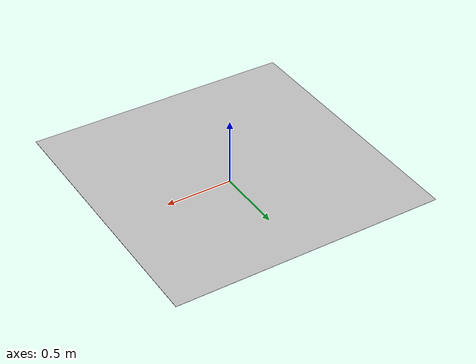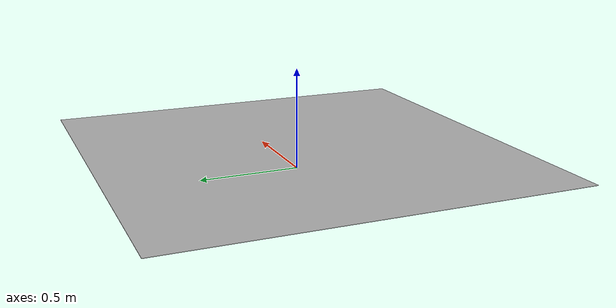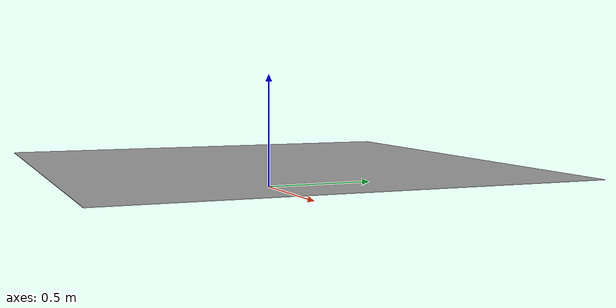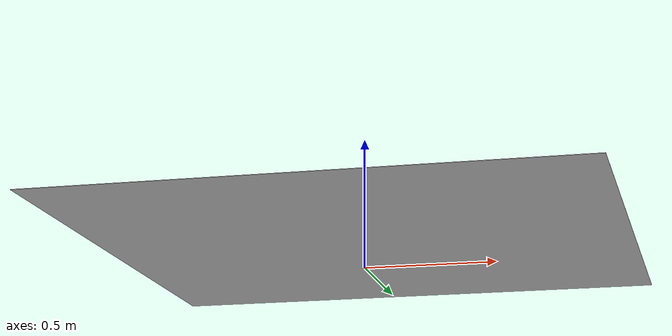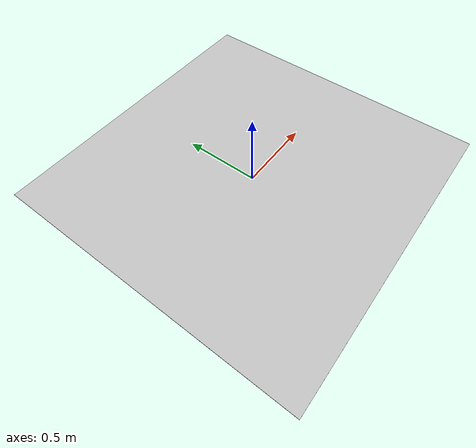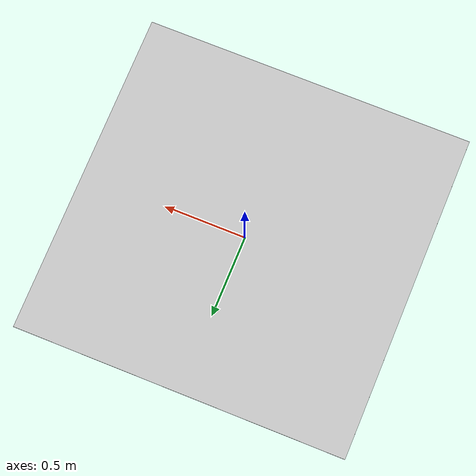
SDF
<?xml version="1.0" encoding="UTF-8"?>
<sdf version="1.4">
   <model name="qrcode">
      <static>true</static>
      <pose>0 0 0.1 0 0 4.712</pose>
      <link name="link">
         <collision name="collision">
            <geometry>
               <plane>
                  <normal>0 0 1</normal>
                  <size>2 2</size>
               </plane>
            </geometry>
            <surface>
               <friction>
                  <ode>
                     <mu>100</mu>
                     <mu2>50</mu2>
                  </ode>
               </friction>
            </surface>
         </collision>
         <visual name="visual">
            <cast_shadows>false</cast_shadows>
            <geometry>
               <plane>
                  <normal>0 0 1</normal>
                  <size>2 2</size>
               </plane>
            </geometry>
            <material>
               <script>
                  <uri>model://qrcode/materials/scripts</uri>
                  <uri>model://qrcode/materials/textures/</uri>
                  <name>qrcode/Image</name>
               </script>
            </material>
         </visual>
      </link>
   </model>
</sdf>
